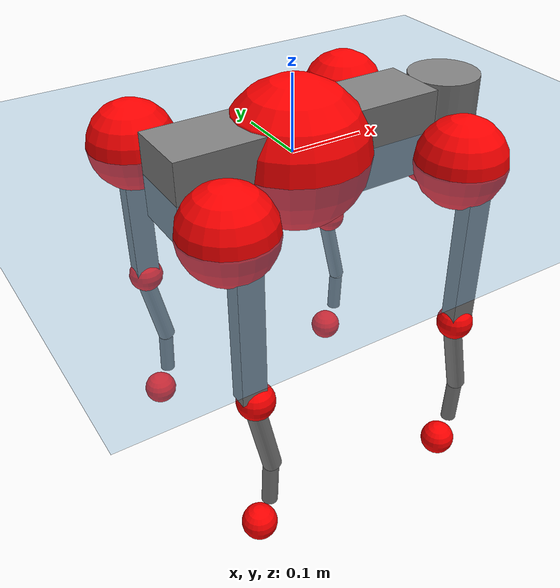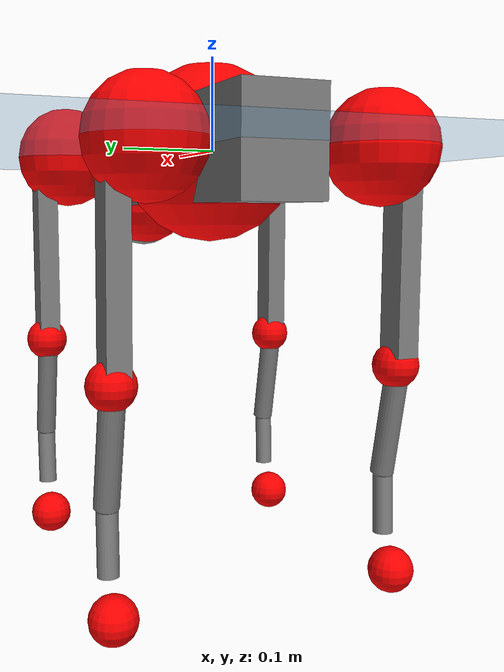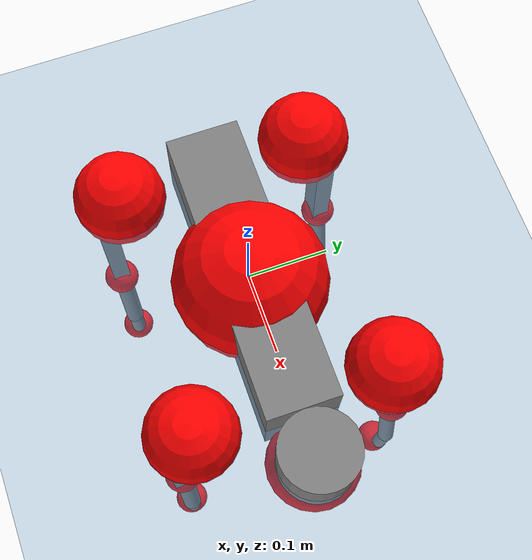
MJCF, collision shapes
<mujoco model="go2">
  <compiler angle="radian" assetdir="assets" balanceinertia="true" inertiafromgeom="false"/>

  <option timestep="0.005" density="1.2" viscosity="2e-05"/>

  <size nkey="1"/>

  <visual>
    <quality shadowsize="8192"/>
    <map shadowclip="0.5"/>
  </visual>

  <default>
    <default class="/">
      <geom contype="0" conaffinity="0" group="1" solref="-1000 -80"/>
      <site size="0.01 0.005 0.005" group="5"/>
      <general forcelimited="true" biastype="affine" gainprm="20" biasprm="0 -20 -0.5"/>
      <default class="go2">
        <joint armature="0.01" damping="0.01" frictionloss="0.2"/>
        <geom condim="1" margin="0.001"/>
        <default class="visual">
          <geom type="mesh" group="2"/>
        </default>
        <default class="collision">
          <geom group="3"/>
          <default class="foot">
            <geom size="0.022 0 0" condim="6" priority="1" friction="0.8 0.02 0.01" solimp="0.015 1 0.022"/>
          </default>
        </default>
        <default class="reward_collision_sphere">
          <geom group="5" rgba="1 0 0 1"/>
        </default>
      </default>
    </default>
  </default>

  <asset>
    <texture type="skybox" colorspace="auto" name="//unnamed_texture_0" builtin="gradient" rgb1="0.95 0.95 0.95" rgb2="0.95 0.95 0.95" width="100" height="600"/>
    <texture type="2d" colorspace="auto" name="texplane" builtin="checker" rgb1="0.345 0.575 0.748" rgb2="0.345 0.575 0.748" markrgb="1 1 1" width="512" height="512"/>
    <material name="MatPlane" class="/" texture="texplane" texuniform="true" texrepeat="2 2" specular="0.9"/>
    <material name="metal" class="/" rgba="0.9 0.95 0.95 1"/>
    <material name="black" class="/" rgba="0 0 0 1"/>
    <material name="white" class="/"/>
    <material name="gray" class="/" rgba="0.671705 0.692426 0.77427 1"/>
    <mesh name="base_0" class="/" file="base_0.obj"/>
    <mesh name="base_1" class="/" file="base_1.obj"/>
    <mesh name="base_2" class="/" file="base_2.obj"/>
    <mesh name="base_3" class="/" file="base_3.obj"/>
    <mesh name="base_4" class="/" file="base_4.obj"/>
    <mesh name="hip_0" class="/" file="hip_0.obj"/>
    <mesh name="hip_1" class="/" file="hip_1.obj"/>
    <mesh name="thigh_0" class="/" file="thigh_0.obj"/>
    <mesh name="thigh_1" class="/" file="thigh_1.obj"/>
    <mesh name="thigh_mirror_0" class="/" file="thigh_mirror_0.obj"/>
    <mesh name="thigh_mirror_1" class="/" file="thigh_mirror_1.obj"/>
    <mesh name="calf_0" class="/" file="calf_0.obj"/>
    <mesh name="calf_1" class="/" file="calf_1.obj"/>
    <mesh name="calf_mirror_0" class="/" file="calf_mirror_0.obj"/>
    <mesh name="calf_mirror_1" class="/" file="calf_mirror_1.obj"/>
    <mesh name="foot" class="/" file="foot.obj"/>
  </asset>

  <worldbody>
    <geom name="floor" class="/" size="100 100 0.125" type="plane" group="0" material="MatPlane"/>
    <light name="toplight_shadow" class="/" pos="0 0 5" dir="0.0990148 0.0990148 -0.990148" type="directional" ambient="0.04 0.04 0.04" diffuse="0.55 0.55 0.55" specular="0.12 0.12 0.12"/>
    <light name="toplight_fill" class="/" pos="0 0 5" dir="0.0990148 0.0990148 -0.990148" type="directional" castshadow="false" ambient="0.04 0.04 0.04" diffuse="0.3 0.3 0.3" specular="0.08 0.08 0.08"/>
    <body name="trunk" childclass="go2" pos="0.0047305 0.0010108 -0.00175948" quat="0.999999 -0.00063576 -0.000936215 0.000311153">
      <inertial pos="0.0223538 -0.00117209 -0.00571238" quat="0.000679765 0.716204 -0.00980136 0.697822" mass="6.34597" diaginertia="0.0351102 0.127044 0.0276347"/>
      <joint name="//unnamed_joint_0" type="free" armature="0" damping="0" frictionloss="0"/>
      <geom name="//unnamed_geom_1" class="visual" material="black" mesh="base_0"/>
      <geom name="//unnamed_geom_2" class="visual" material="black" mesh="base_1"/>
      <geom name="//unnamed_geom_3" class="visual" material="black" mesh="base_2"/>
      <geom name="//unnamed_geom_4" class="visual" material="white" mesh="base_3"/>
      <geom name="//unnamed_geom_5" class="visual" material="gray" mesh="base_4"/>
      <geom name="trunk_1" class="collision" size="0.181023 0.0449911 0.0548554" type="box"/>
      <geom name="trunk_2" class="collision" size="0.0481188 0.0433069" pos="0.22936 0 0.0103333" type="cylinder"/>
      <geom name="trunk_3" class="collision" size="0.0452317" pos="0.235798 0 -0.0619997"/>
      <geom name="//unnamed_geom_9" class="reward_collision_sphere" size="0.0962376"/>
      <geom name="//unnamed_geom_10" class="reward_collision_sphere" size="0.0577425" pos="0.225336 0 -0.0464998"/>
      <site name="imu" pos="-0.0193502 0.00969187 0.0319214" size="0.00962376"/>
      <camera name="track" pos="0 -2.09805 0" quat="0.707107 0.707107 0 0" mode="trackcom"/>
      <camera name="ego_camera" pos="0.251089 0 0.0464998" quat="-0.5 -0.5 0.5 0.5"/>
      <body name="FL_hip" pos="0.15602 0.048968 0.00123413" quat="0.999997 0.00011504 -0.00199052 0.0012309">
        <inertial pos="0.00121863 0.00141796 -0.000763288" quat="0.494194 0.50279 0.506099 0.496829" mass="0.56475" diaginertia="0.000278187 0.000764359 0.000546263"/>
        <joint name="FL_hip_joint" pos="0 0 0" axis="0.999971 -0.0055644 0.00526514" range="-1.07169 1.10965" armature="0.00876631" damping="0.0130938" frictionloss="0.207382"/>
        <geom name="//unnamed_geom_11" class="visual" material="metal" mesh="hip_0"/>
        <geom name="//unnamed_geom_12" class="visual" material="gray" mesh="hip_1"/>
        <geom name="//unnamed_geom_13" class="collision" size="0.0442693 0.0192475" pos="0 0.0839221 0" quat="0.707107 0.707107 0 0" type="cylinder"/>
        <geom name="//unnamed_geom_14" class="reward_collision_sphere" size="0.0577425" pos="0 0.0734318 0"/>
        <body name="FL_thigh" pos="0.000864015 0.101313 0.00176641" quat="1 3.86739e-06 0.000233814 -0.000221442">
          <inertial pos="-0.0076841 -0.0216527 -0.0373606" quat="0.827909 0.0886921 -0.0157442 0.553582" mass="0.986399" diaginertia="0.00194898 0.00756943 0.00100242"/>
          <joint name="FL_thigh_joint" pos="0 0 0" axis="-0.00103571 0.999999 0.000284123" range="-1.52173 3.45404" armature="0.00872608" damping="0.0299737" frictionloss="0.201641"/>
          <geom name="//unnamed_geom_15" class="visual" material="metal" mesh="thigh_0"/>
          <geom name="//unnamed_geom_16" class="visual" material="gray" mesh="thigh_1"/>
          <geom name="//unnamed_geom_17" class="collision" size="0.102493 0.0117891 0.0163604" pos="0 0 -0.110049" quat="0.707107 0 0.707107 0" type="box"/>
          <body name="FL_calf" pos="0.000883842 0.00118925 -0.221853" quat="1 -0.000138591 0.000116754 4.97715e-05">
            <inertial pos="0.00514505 5.98664e-05 -0.144601" quat="0.714134 0.0170233 -0.00841336 0.699752" mass="0.221888" diaginertia="0.000490608 0.00188334 6.32253e-05"/>
            <joint name="FL_calf_joint" pos="0 0 0" axis="0.000714049 0.999998 0.00188781" range="-2.76445 -0.783186" armature="0.0093544" damping="0.00140207" frictionloss="0.171865"/>
            <geom name="//unnamed_geom_18" class="visual" material="gray" mesh="calf_0"/>
            <geom name="//unnamed_geom_19" class="visual" material="black" mesh="calf_1"/>
            <geom name="FL_calf0" class="collision" size="0.0115485 0.0577425" pos="0.00643818 0 -0.0619997" quat="0.994493 0 -0.104807 0" type="cylinder"/>
            <geom name="//unnamed_geom_21" class="collision" size="0.0105861 0.0312772" pos="0.0160955 0 -0.152933" quat="0.999688 0 0.0249974 0" type="cylinder"/>
            <geom name="//unnamed_geom_22" class="visual" pos="0 0 -0.220099" quat="1 0 0 0" material="black" mesh="foot"/>
            <geom name="FL_foot" class="foot" size="0.0240061" pos="-0.00160955 0 -0.220099"/>
            <geom name="//unnamed_geom_24" class="reward_collision_sphere" size="0.0240594"/>
            <geom name="//unnamed_geom_25" class="reward_collision_sphere" size="0.0240594" pos="-0.00160955 0 -0.220099"/>
            <site name="FL_foot" class="foot" pos="-0.00160955 0 -0.220099" size="0.00962376"/>
          </body>
        </body>
      </body>
      <body name="FR_hip" pos="0.155499 -0.0521613 -0.00212862" quat="1 -0.000597509 -0.000354004 0.00036114">
        <inertial pos="-0.00653486 0.000446529 1.39492e-05" quat="0.497787 0.505462 0.502192 0.49449" mass="0.547488" diaginertia="0.000286573 0.000725313 0.000560826"/>
        <joint name="FR_hip_joint" pos="0 0 0" axis="0.999977 0.00669674 0.000585508" stiffness="0.0238296" range="-1.04219 1.04076" armature="0.0120239" damping="0.000192092" frictionloss="0.145173"/>
        <geom name="//unnamed_geom_26" class="visual" pos="0 1.36751e-10 5.86555e-09" quat="4.63268e-05 1 0 0" material="metal" mesh="hip_0"/>
        <geom name="//unnamed_geom_27" class="visual" pos="0 2.21691e-10 -1.45078e-08" quat="4.63268e-05 1 0 0" material="gray" mesh="hip_1"/>
        <geom name="//unnamed_geom_28" class="collision" size="0.0442693 0.0192475" pos="0 -0.0839221 0" quat="0.707107 0.707107 0 0" type="cylinder"/>
        <geom name="//unnamed_geom_29" class="reward_collision_sphere" size="0.0577425" pos="0 -0.0734318 0"/>
        <body name="FR_thigh" pos="0.00049764 -0.10225 -0.00379028" quat="0.999998 0.0016305 0.000983972 -0.000840435">
          <inertial pos="-0.00170075 0.0288107 -0.0360778" quat="0.545389 -0.0124918 0.0841025 0.833859" mass="1.0734" diaginertia="0.00194372 0.00711111 0.00103863"/>
          <joint name="FR_thigh_joint" pos="0 0 0" axis="-0.00441482 -0.999908 0.0128392" range="-3.53644 1.53204" armature="0.00949813" damping="0" frictionloss="0.207104"/>
          <geom name="//unnamed_geom_30" class="visual" material="metal" mesh="thigh_mirror_0"/>
          <geom name="//unnamed_geom_31" class="visual" material="gray" mesh="thigh_mirror_1"/>
          <geom name="//unnamed_geom_32" class="collision" size="0.102493 0.0117891 0.0163604" pos="0 0 -0.110049" quat="0.707107 0 0.707107 0" type="box"/>
          <body name="FR_calf" pos="-0.000443921 0.00149497 -0.221539" quat="1 -0.000184054 -0.00013117 3.1455e-05">
            <inertial pos="0.0057432 0.00118326 -0.14863" quat="0.699177 -0.00386897 0.010499 0.714861" mass="0.214523" diaginertia="0.000469276 0.00182902 6.11888e-05"/>
            <joint name="FR_calf_joint" pos="0 0 0" axis="0.00985353 -0.99988 0.0119701" range="0.823359 2.69563" armature="0.0102057" damping="0.00933189" frictionloss="0.215557"/>
            <geom name="//unnamed_geom_33" class="visual" material="gray" mesh="calf_mirror_0"/>
            <geom name="//unnamed_geom_34" class="visual" material="black" mesh="calf_mirror_1"/>
            <geom name="FR_calf0" class="collision" size="0.0125109 0.0577425" pos="0.00804773 0 -0.0619997" quat="0.995004 0 -0.0998334 0" type="cylinder"/>
            <geom name="//unnamed_geom_36" class="collision" size="0.0105861 0.0312772" pos="0.0160955 0 -0.152933" quat="0.999688 0 0.0249974 0" type="cylinder"/>
            <geom name="//unnamed_geom_37" class="visual" pos="0 0 -0.220099" quat="1 0 0 0" material="black" mesh="foot"/>
            <geom name="FR_foot" class="foot" size="0.0217134" pos="-0.00160955 0 -0.220099"/>
            <geom name="//unnamed_geom_39" class="reward_collision_sphere" size="0.0240594"/>
            <geom name="//unnamed_geom_40" class="reward_collision_sphere" size="0.0240594" pos="-0.00160955 0 -0.220099"/>
            <site name="FR_foot" class="foot" pos="-0.00160955 0 -0.220099" size="0.00962376"/>
          </body>
        </body>
      </body>
      <body name="RL_hip" pos="-0.158858 0.052383 0.000410136" quat="0.999995 0.00209974 -0.00102593 0.00223002">
        <inertial pos="-0.000170328 0.000351376 0.00196919" quat="0.505584 0.497988 0.497016 0.499368" mass="0.629386" diaginertia="0.000302132 0.000751833 0.000554323"/>
        <joint name="RL_hip_joint" pos="0 0 0" axis="-0.9999 0.0132032 -0.00502903" range="-1.09824 1.08183" armature="0.00975623" damping="0.00701672" frictionloss="0.209834"/>
        <geom name="//unnamed_geom_41" class="visual" pos="1.99109e-09 0 3.90299e-07" quat="4.63268e-05 0 1 0" material="metal" mesh="hip_0"/>
        <geom name="//unnamed_geom_42" class="visual" pos="3.22779e-09 0 3.46139e-07" quat="4.63268e-05 0 1 0" material="gray" mesh="hip_1"/>
        <geom name="//unnamed_geom_43" class="collision" size="0.0442693 0.0192475" pos="0 0.0839221 0" quat="0.707107 0.707107 0 0" type="cylinder"/>
        <geom name="//unnamed_geom_44" class="reward_collision_sphere" size="0.0577425" pos="0 0.0734318 0"/>
        <body name="RL_thigh" pos="0.00438325 0.101836 -0.0012501" quat="0.999998 0.000669183 -0.00206991 0.000412328">
          <inertial pos="-0.00276552 -0.0254247 -0.0362284" quat="0.820396 0.084953 -0.0204948 0.565078" mass="1.06324" diaginertia="0.00206984 0.0076172 0.00106421"/>
          <joint name="RL_thigh_joint" pos="0 0 0" axis="-0.000701614 0.999999 0.00121556" stiffness="0.0123257" range="-0.562552 4.50953" armature="0.00990426" damping="0.030908" frictionloss="0.173182"/>
          <geom name="//unnamed_geom_45" class="visual" material="metal" mesh="thigh_0"/>
          <geom name="//unnamed_geom_46" class="visual" material="gray" mesh="thigh_1"/>
          <geom name="//unnamed_geom_47" class="collision" size="0.102493 0.0117891 0.0163604" pos="0 0 -0.110049" quat="0.707107 0 0.707107 0" type="box"/>
          <body name="RL_calf" pos="0.00102266 0.00256379 -0.218512" quat="1 -5.88316e-05 -0.000220982 0.000235852">
            <inertial pos="0.00481298 -0.000856883 -0.145882" quat="0.711226 0.00213095 -0.00221273 0.702957" mass="0.213667" diaginertia="0.000503602 0.0018543 6.12621e-05"/>
            <joint name="RL_calf_joint" pos="0 0 0" axis="0.00887846 0.999961 -0.000111793" range="-2.77236 -0.841743" armature="0.00912743" damping="0.0282283" frictionloss="0.191092"/>
            <geom name="//unnamed_geom_48" class="visual" material="gray" mesh="calf_0"/>
            <geom name="//unnamed_geom_49" class="visual" material="black" mesh="calf_1"/>
            <geom name="RL_calf0" class="collision" size="0.0125109 0.0577425" pos="0.00804773 0 -0.0619997" quat="0.995004 0 -0.0998334 0" type="cylinder"/>
            <geom name="//unnamed_geom_51" class="collision" size="0.0105861 0.0312772" pos="0.0160955 0 -0.152933" quat="0.999688 0 0.0249974 0" type="cylinder"/>
            <geom name="//unnamed_geom_52" class="visual" pos="0 0 -0.220099" quat="1 0 0 0" material="black" mesh="foot"/>
            <geom name="RL_foot" class="foot" size="0.0200621" pos="-0.00160955 0 -0.220099"/>
            <geom name="//unnamed_geom_54" class="reward_collision_sphere" size="0.0240594"/>
            <geom name="//unnamed_geom_55" class="reward_collision_sphere" size="0.0240594" pos="-0.00160955 0 -0.220099"/>
            <site name="RL_foot" class="foot" pos="-0.00160955 0 -0.220099" size="0.00962376"/>
          </body>
        </body>
      </body>
      <body name="RR_hip" pos="-0.156838 -0.0438115 -0.00159284" quat="1 0.000104411 0.000266602 -0.000275468">
        <inertial pos="0.00465059 -0.00426836 -5.93342e-05" quat="0.487588 0.494495 0.497187 0.520131" mass="0.607943" diaginertia="0.000299581 0.000755312 0.000554084"/>
        <joint name="RR_hip_joint" pos="0 0 0" axis="-0.999904 0.00837752 -0.0109948" range="-0.997255 1.03987" armature="0.0072338" damping="0" frictionloss="0.22286"/>
        <geom name="//unnamed_geom_56" class="visual" pos="-1.98263e-09 1.36751e-10 3.84433e-07" quat="2.14617e-09 4.63268e-05 4.63268e-05 -1" material="metal" mesh="hip_0"/>
        <geom name="//unnamed_geom_57" class="visual" pos="-3.2487e-09 2.21691e-10 3.60647e-07" quat="2.14617e-09 4.63268e-05 4.63268e-05 -1" material="gray" mesh="hip_1"/>
        <geom name="//unnamed_geom_58" class="collision" size="0.0442693 0.0192475" pos="0 -0.0839221 0" quat="0.707107 0.707107 0 0" type="cylinder"/>
        <geom name="//unnamed_geom_59" class="reward_collision_sphere" size="0.0577425" pos="0 -0.0734318 0"/>
        <body name="RR_thigh" pos="0.00281663 -0.101972 0.00303436" quat="1 -9.52806e-05 0.000257147 6.95375e-05">
          <inertial pos="-0.00259862 0.022487 -0.0330782" quat="0.549009 -0.0225776 0.0851091 0.831165" mass="0.989287" diaginertia="0.00192245 0.00731433 0.00105868"/>
          <joint name="RR_thigh_joint" pos="0 0 0" axis="-0.00369168 -0.999574 -0.0289388" stiffness="0.00237009" range="-4.46138 0.522505" armature="0.00982756" damping="0.000902068" frictionloss="0.169363"/>
          <geom name="//unnamed_geom_60" class="visual" material="metal" mesh="thigh_mirror_0"/>
          <geom name="//unnamed_geom_61" class="visual" material="gray" mesh="thigh_mirror_1"/>
          <geom name="//unnamed_geom_62" class="collision" size="0.102493 0.0117891 0.0163604" pos="0 0 -0.110049" quat="0.707107 0 0.707107 0" type="box"/>
          <body name="RR_calf" pos="0.00646452 -0.000916089 -0.222631" quat="0.999999 0.00059241 -0.000964501 -9.62541e-05">
            <inertial pos="-0.000926646 0.00182413 -0.145676" quat="0.701771 0.001598 0.00741442 0.712362" mass="0.212833" diaginertia="0.000538151 0.00200931 6.60339e-05"/>
            <joint name="RR_calf_joint" pos="0 0 0" axis="-0.00967025 -0.999953 -0.000170836" range="0.812187 2.59819" armature="0.0106462" damping="0.0213293" frictionloss="0.214825"/>
            <geom name="//unnamed_geom_63" class="visual" material="gray" mesh="calf_mirror_0"/>
            <geom name="//unnamed_geom_64" class="visual" material="black" mesh="calf_mirror_1"/>
            <geom name="RR_calf0" class="collision" size="0.0125109 0.0577425" pos="0.00804773 0 -0.0619997" quat="0.995004 0 -0.0998334 0" type="cylinder"/>
            <geom name="//unnamed_geom_66" class="collision" size="0.0105861 0.0312772" pos="0.0160955 0 -0.152933" quat="0.999688 0 0.0249974 0" type="cylinder"/>
            <geom name="//unnamed_geom_67" class="visual" pos="0 0 -0.220099" quat="1 0 0 0" material="black" mesh="foot"/>
            <geom name="RR_foot" class="foot" size="0.0184682" pos="-0.00160955 0 -0.220099"/>
            <geom name="//unnamed_geom_69" class="reward_collision_sphere" size="0.0240594"/>
            <geom name="//unnamed_geom_70" class="reward_collision_sphere" size="0.0240594" pos="-0.00160955 0 -0.220099"/>
            <site name="RR_foot" class="foot" pos="-0.00160955 0 -0.220099" size="0.00962376"/>
          </body>
        </body>
      </body>
    </body>
  </worldbody>

  <contact>
    <pair class="/" geom1="floor" geom2="FL_foot" name="//unnamed_contact_0"/>
    <pair class="/" geom1="floor" geom2="FR_foot" name="//unnamed_contact_1"/>
    <pair class="/" geom1="floor" geom2="RL_foot" name="//unnamed_contact_2"/>
    <pair class="/" geom1="floor" geom2="RR_foot" name="//unnamed_contact_3"/>
  </contact>

  <actuator>
    <general name="FL_hip" class="/" joint="FL_hip_joint" forcerange="-21.6425 21.6425" gainprm="19.2366" biasprm="0 -19.2366 -0.483306"/>
    <general name="FL_thigh" class="/" joint="FL_thigh_joint" forcerange="-22.2043 22.2043" gainprm="19.2366" biasprm="0 -19.2366 -0.483306"/>
    <general name="FL_calf" class="/" joint="FL_calf_joint" forcerange="-42.9769 42.9769" gainprm="19.2366" biasprm="0 -19.2366 -0.483306"/>
    <general name="FR_hip" class="/" joint="FR_hip_joint" forcerange="-17.916 17.916" gainprm="19.2366" biasprm="0 -19.2366 -0.483306"/>
    <general name="FR_thigh" class="/" joint="FR_thigh_joint" forcerange="-23.0271 23.0271" gainprm="19.2366" biasprm="0 -19.2366 -0.483306"/>
    <general name="FR_calf" class="/" joint="FR_calf_joint" forcerange="-46.2006 46.2006" gainprm="19.2366" biasprm="0 -19.2366 -0.483306"/>
    <general name="RL_hip" class="/" joint="RL_hip_joint" forcerange="-21.282 21.282" gainprm="19.2366" biasprm="0 -19.2366 -0.483306"/>
    <general name="RL_thigh" class="/" joint="RL_thigh_joint" forcerange="-21.4566 21.4566" gainprm="19.2366" biasprm="0 -19.2366 -0.483306"/>
    <general name="RL_calf" class="/" joint="RL_calf_joint" forcerange="-47.3352 47.3352" gainprm="19.2366" biasprm="0 -19.2366 -0.483306"/>
    <general name="RR_hip" class="/" joint="RR_hip_joint" forcerange="-24.6353 24.6353" gainprm="19.2366" biasprm="0 -19.2366 -0.483306"/>
    <general name="RR_thigh" class="/" joint="RR_thigh_joint" forcerange="-20.938 20.938" gainprm="19.2366" biasprm="0 -19.2366 -0.483306"/>
    <general name="RR_calf" class="/" joint="RR_calf_joint" forcerange="-37.3315 37.3315" gainprm="19.2366" biasprm="0 -19.2366 -0.483306"/>
  </actuator>

  <sensor>
    <gyro site="imu" name="imu_angular_velocity"/>
    <velocimeter site="imu" name="imu_linear_velocity"/>
    <framelinvel objtype="site" objname="FL_foot" name="FL_foot_global_linear_velocity"/>
    <framelinvel objtype="site" objname="FR_foot" name="FR_foot_global_linear_velocity"/>
    <framelinvel objtype="site" objname="RL_foot" name="RL_foot_global_linear_velocity"/>
    <framelinvel objtype="site" objname="RR_foot" name="RR_foot_global_linear_velocity"/>
  </sensor>

  <keyframe>
    <key name="home" qpos="0 0 0.325 1 0 0 0 0.1 0.8 -1.5 -0.1 -0.8 1.5 -0.1 0.8 -1.5 0.1 -0.8 1.5"/>
  </keyframe>
</mujoco>
